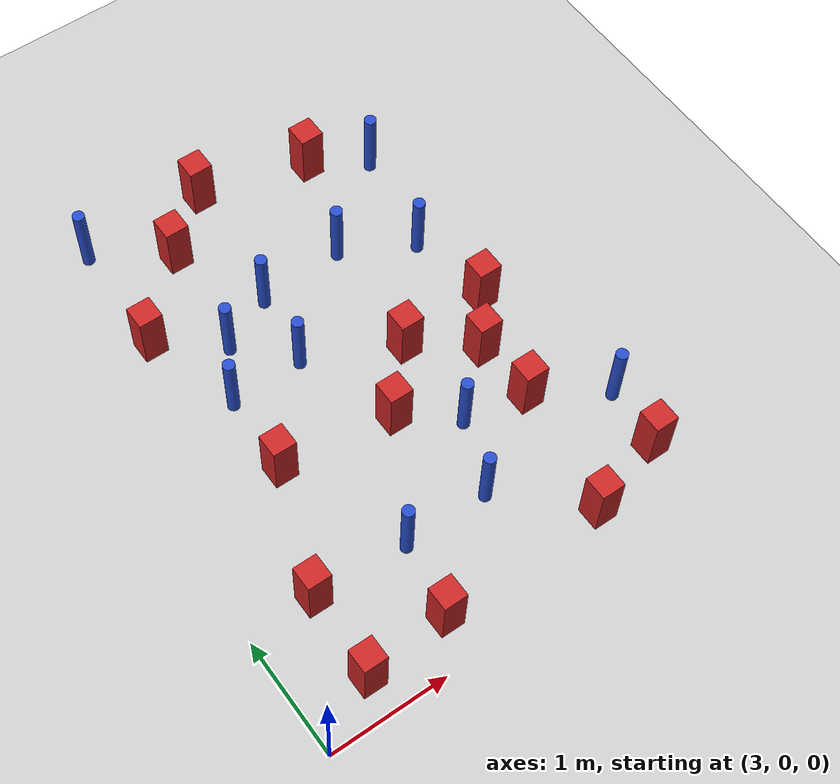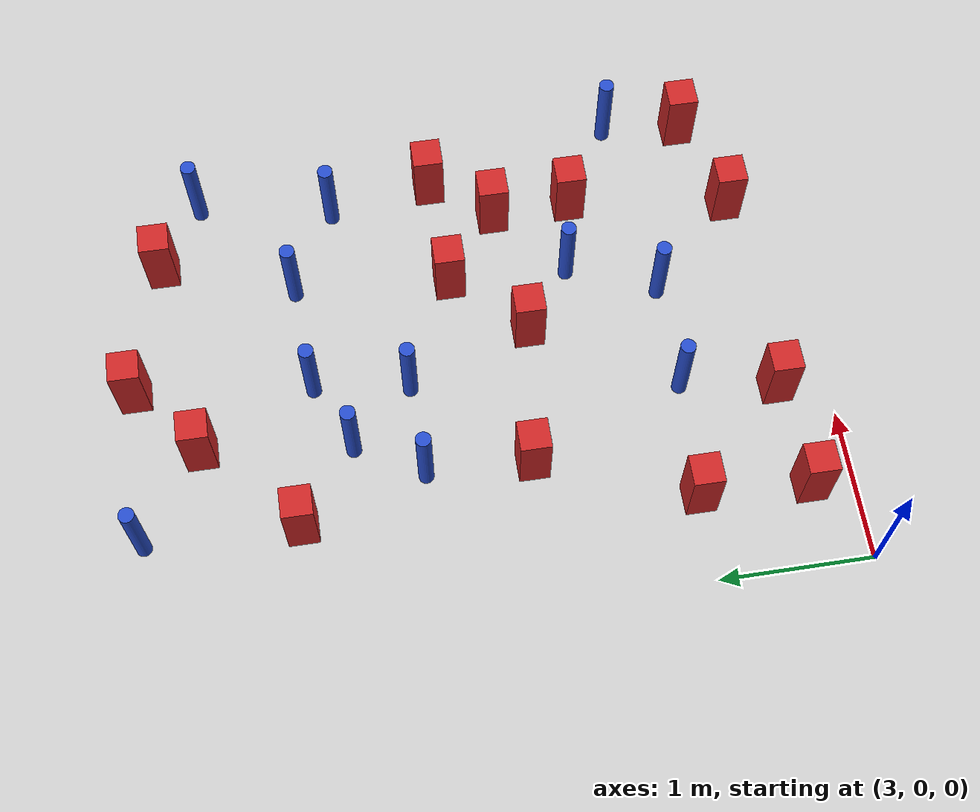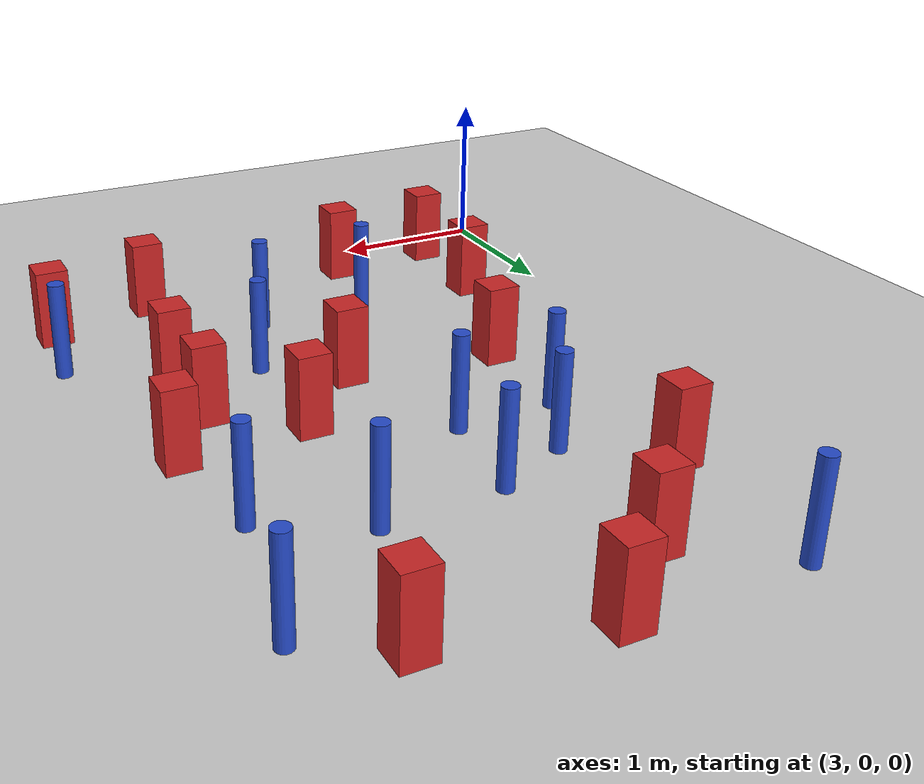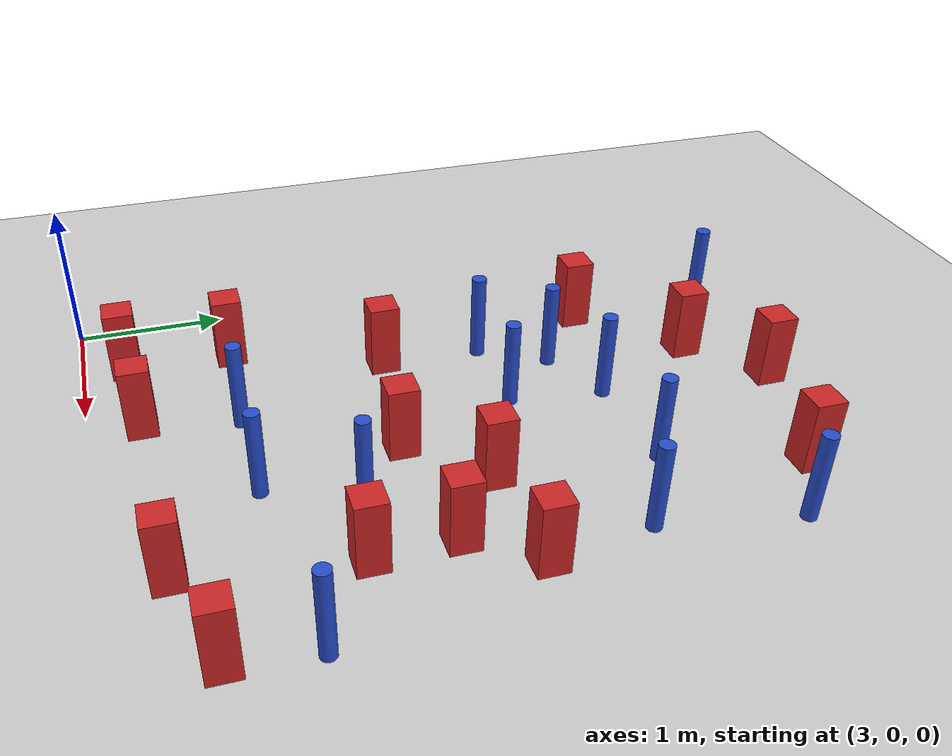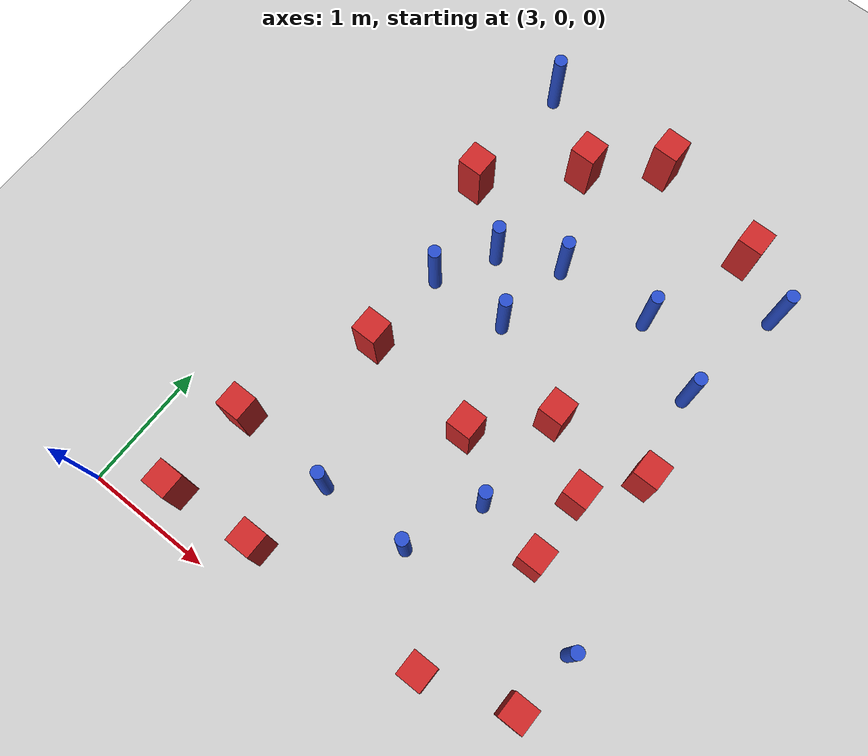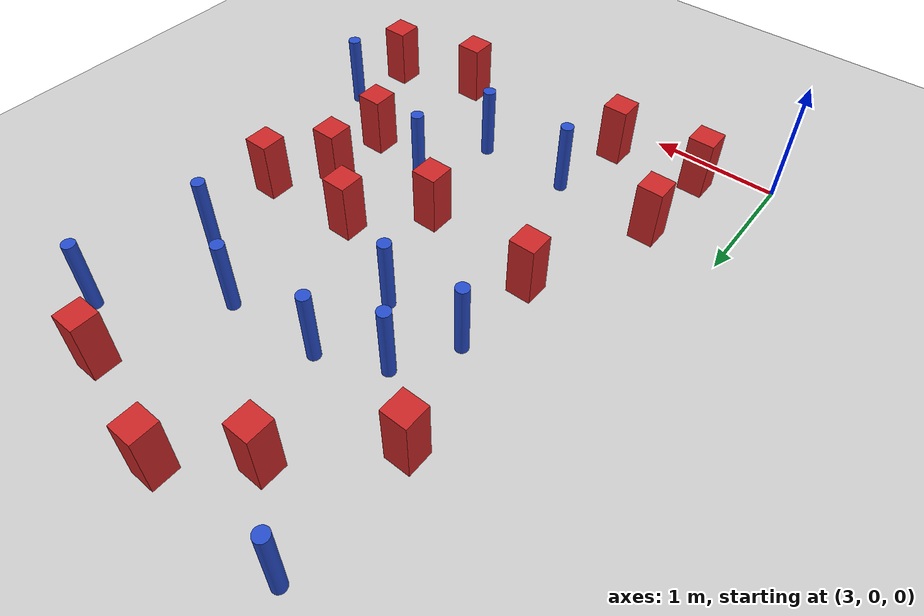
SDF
<sdf version="1.6">
 <world name="default">
  <model name="ground_plane">
   <static>1</static>
   <link name="link">
    <collision name="collision">
     <geometry><plane><normal>0 0 1</normal><size>100 100</size></plane></geometry>
     <surface><friction><ode><mu>100</mu><mu2>50</mu2></ode></friction></surface>
    </collision>
    <visual name="visual">
     <cast_shadows>0</cast_shadows>
     <geometry><plane><normal>0 0 1</normal><size>100 100</size></plane></geometry>
     <material>
      <ambient>1.0 1.0 1.0 1.0</ambient>
      <diffuse>0.8 0.8 0.8 1.0</diffuse>
      <specular>0.01 0.01 0.01 1.000000</specular>
     </material>
    </visual>
   </link>
  </model>
  <model name="pole_obstacle3">
   <static>true</static>
   <pose>6.40580370564 1.11894552427 -9.47619616065e-06 5.49618799738e-07 2.36310414071e-07 -1.55090534796e-07</pose>
   <link name="link">
    <pose>0 0 0.3 0 -0 0</pose>
    <inertial>
     <mass>1</mass>
     <inertia><ixx>0.145833</ixx><ixy>0</ixy><ixz>0</ixz><iyy>0.145833</iyy><iyz>0</iyz><izz>0.125</izz></inertia>
    </inertial>
    <collision name="collision">
     <geometry><cylinder><radius>0.05</radius><length>.6</length></cylinder></geometry>
    </collision>
    <visual name="visual">
     <geometry><cylinder><radius>0.05</radius><length>.6</length></cylinder></geometry>
     <material>
      <script><name>Gazebo/Blue</name><uri>file://media/materials/scripts/gazebo.material</uri></script>
     </material>
    </visual>
   </link>
  </model>
  <model name="square_post_obstacle9">
   <static>true</static>
   <pose>3.55538210605 1.01613566301 -6.11067671241e-07 -5.50515727128e-06 -8.79689657224e-07 2.37013304536e-05</pose>
   <link name="link">
    <pose>0 0 0.25 0 -0 0</pose>
    <inertial>
     <mass>100</mass>
     <inertia>
      <ixx>0.166667</ixx>
      <ixy>0</ixy>
      <ixz>0</ixz>
      <iyy>0.166667</iyy>
      <iyz>0</iyz>
      <izz>0.166667</izz>
     </inertia>
    </inertial>
    <collision name="collision"><geometry><box><size>.2 .2 .5</size></box></geometry></collision>
    <visual name="visual">
     <geometry><box><size>.2 .2 .5</size></box></geometry>
     <material>
      <script><name>Gazebo/Red</name><uri>file://media/materials/scripts/gazebo.material</uri></script>
     </material>
    </visual>
   </link>
  </model>
  <model name="square_post_obstacle15">
   <static>true</static>
   <pose>3.71951136214 3.53396822904 -6.11067671241e-07 -5.50515727128e-06 -8.79689657224e-07 2.37013304536e-05</pose>
   <link name="link">
    <pose>0 0 0.25 0 -0 0</pose>
    <inertial>
     <mass>100</mass>
     <inertia>
      <ixx>0.166667</ixx>
      <ixy>0</ixy>
      <ixz>0</ixz>
      <iyy>0.166667</iyy>
      <iyz>0</iyz>
      <izz>0.166667</izz>
     </inertia>
    </inertial>
    <collision name="collision"><geometry><box><size>.2 .2 .5</size></box></geometry></collision>
    <visual name="visual">
     <geometry><box><size>.2 .2 .5</size></box></geometry>
     <material>
      <script><name>Gazebo/Red</name><uri>file://media/materials/scripts/gazebo.material</uri></script>
     </material>
    </visual>
   </link>
  </model>
  <model name="square_post_obstacle23">
   <static>true</static>
   <pose>3.52569320102 0.297685927197 -6.11067671241e-07 -5.50515727128e-06 -8.79689657224e-07 2.37013304536e-05</pose>
   <link name="link">
    <pose>0 0 0.25 0 -0 0</pose>
    <inertial>
     <mass>100</mass>
     <inertia>
      <ixx>0.166667</ixx>
      <ixy>0</ixy>
      <ixz>0</ixz>
      <iyy>0.166667</iyy>
      <iyz>0</iyz>
      <izz>0.166667</izz>
     </inertia>
    </inertial>
    <collision name="collision"><geometry><box><size>.2 .2 .5</size></box></geometry></collision>
    <visual name="visual">
     <geometry><box><size>.2 .2 .5</size></box></geometry>
     <material>
      <script><name>Gazebo/Red</name><uri>file://media/materials/scripts/gazebo.material</uri></script>
     </material>
    </visual>
   </link>
  </model>
  <model name="square_post_obstacle26">
   <static>true</static>
   <pose>4.23867038706 0.354089430729 -6.11067671241e-07 -5.50515727128e-06 -8.79689657224e-07 2.37013304536e-05</pose>
   <link name="link">
    <pose>0 0 0.25 0 -0 0</pose>
    <inertial>
     <mass>100</mass>
     <inertia>
      <ixx>0.166667</ixx>
      <ixy>0</ixy>
      <ixz>0</ixz>
      <iyy>0.166667</iyy>
      <iyz>0</iyz>
      <izz>0.166667</izz>
     </inertia>
    </inertial>
    <collision name="collision"><geometry><box><size>.2 .2 .5</size></box></geometry></collision>
    <visual name="visual">
     <geometry><box><size>.2 .2 .5</size></box></geometry>
     <material>
      <script><name>Gazebo/Red</name><uri>file://media/materials/scripts/gazebo.material</uri></script>
     </material>
    </visual>
   </link>
  </model>
  <model name="pole_obstacle55">
   <static>true</static>
   <pose>4.21173743195 3.1557542884 -9.47619616065e-06 5.49618799738e-07 2.36310414051e-07 -1.55090534805e-07</pose>
   <link name="link">
    <pose>0 0 0.3 0 -0 0</pose>
    <inertial>
     <mass>1</mass>
     <inertia><ixx>0.145833</ixx><ixy>0</ixy><ixz>0</ixz><iyy>0.145833</iyy><iyz>0</iyz><izz>0.125</izz></inertia>
    </inertial>
    <collision name="collision">
     <geometry><cylinder><radius>0.05</radius><length>.6</length></cylinder></geometry>
    </collision>
    <visual name="visual">
     <geometry><cylinder><radius>0.05</radius><length>.6</length></cylinder></geometry>
     <material>
      <script><name>Gazebo/Blue</name><uri>file://media/materials/scripts/gazebo.material</uri></script>
     </material>
    </visual>
   </link>
  </model>
  <model name="square_post_obstacle76">
   <static>true</static>
   <pose>3.93827418173 2.02833875753 -6.11067671241e-07 -5.50515727128e-06 -8.79689657224e-07 2.37013304536e-05</pose>
   <link name="link">
    <pose>0 0 0.25 0 -0 0</pose>
    <inertial>
     <mass>100</mass>
     <inertia>
      <ixx>0.166667</ixx>
      <ixy>0</ixy>
      <ixz>0</ixz>
      <iyy>0.166667</iyy>
      <iyz>0</iyz>
      <izz>0.166667</izz>
     </inertia>
    </inertial>
    <collision name="collision"><geometry><box><size>.2 .2 .5</size></box></geometry></collision>
    <visual name="visual">
     <geometry><box><size>.2 .2 .5</size></box></geometry>
     <material>
      <script><name>Gazebo/Red</name><uri>file://media/materials/scripts/gazebo.material</uri></script>
     </material>
    </visual>
   </link>
  </model>
  <model name="pole_obstacle74">
   <static>true</static>
   <pose>5.07295200999 0.983745637312 -9.47619616065e-06 5.49618799737e-07 2.36310414073e-07 -1.55090534792e-07</pose>
   <link name="link">
    <pose>0 0 0.3 0 -0 0</pose>
    <inertial>
     <mass>1</mass>
     <inertia><ixx>0.145833</ixx><ixy>0</ixy><ixz>0</ixz><iyy>0.145833</iyy><iyz>0</iyz><izz>0.125</izz></inertia>
    </inertial>
    <collision name="collision">
     <geometry><cylinder><radius>0.05</radius><length>.6</length></cylinder></geometry>
    </collision>
    <visual name="visual">
     <geometry><cylinder><radius>0.05</radius><length>.6</length></cylinder></geometry>
     <material>
      <script><name>Gazebo/Blue</name><uri>file://media/materials/scripts/gazebo.material</uri></script>
     </material>
    </visual>
   </link>
  </model>
  <model name="pole_obstacle86">
   <static>true</static>
   <pose>5.41553206695 3.42175717961 -9.47619616065e-06 5.49618799738e-07 2.36310414051e-07 -1.55090534805e-07</pose>
   <link name="link">
    <pose>0 0 0.3 0 -0 0</pose>
    <inertial>
     <mass>1</mass>
     <inertia><ixx>0.145833</ixx><ixy>0</ixy><ixz>0</ixz><iyy>0.145833</iyy><iyz>0</iyz><izz>0.125</izz></inertia>
    </inertial>
    <collision name="collision">
     <geometry><cylinder><radius>0.05</radius><length>.6</length></cylinder></geometry>
    </collision>
    <visual name="visual">
     <geometry><cylinder><radius>0.05</radius><length>.6</length></cylinder></geometry>
     <material>
      <script><name>Gazebo/Blue</name><uri>file://media/materials/scripts/gazebo.material</uri></script>
     </material>
    </visual>
   </link>
  </model>
  <model name="square_post_obstacle82">
   <static>true</static>
   <pose>5.3345197611 2.37565667691 -6.11067671241e-07 -5.50515727128e-06 -8.79689657224e-07 2.37013304536e-05</pose>
   <link name="link">
    <pose>0 0 0.25 0 -0 0</pose>
    <inertial>
     <mass>100</mass>
     <inertia>
      <ixx>0.166667</ixx>
      <ixy>0</ixy>
      <ixz>0</ixz>
      <iyy>0.166667</iyy>
      <iyz>0</iyz>
      <izz>0.166667</izz>
     </inertia>
    </inertial>
    <collision name="collision"><geometry><box><size>.2 .2 .5</size></box></geometry></collision>
    <visual name="visual">
     <geometry><box><size>.2 .2 .5</size></box></geometry>
     <material>
      <script><name>Gazebo/Red</name><uri>file://media/materials/scripts/gazebo.material</uri></script>
     </material>
    </visual>
   </link>
  </model>
  <model name="pole_obstacle97">
   <static>true</static>
   <pose>4.34868274485 0.977010980778 -9.47619616065e-06 5.49618799737e-07 2.36310414073e-07 -1.55090534792e-07</pose>
   <link name="link">
    <pose>0 0 0.3 0 -0 0</pose>
    <inertial>
     <mass>1</mass>
     <inertia><ixx>0.145833</ixx><ixy>0</ixy><ixz>0</ixz><iyy>0.145833</iyy><iyz>0</iyz><izz>0.125</izz></inertia>
    </inertial>
    <collision name="collision">
     <geometry><cylinder><radius>0.05</radius><length>.6</length></cylinder></geometry>
    </collision>
    <visual name="visual">
     <geometry><cylinder><radius>0.05</radius><length>.6</length></cylinder></geometry>
     <material>
      <script><name>Gazebo/Blue</name><uri>file://media/materials/scripts/gazebo.material</uri></script>
     </material>
    </visual>
   </link>
  </model>
  <model name="pole_obstacle121">
   <static>true</static>
   <pose>6.16025132692 4.0187862755 -9.47619616065e-06 5.49618799738e-07 2.36310414038e-07 -1.55090534813e-07</pose>
   <link name="link">
    <pose>0 0 0.3 0 -0 0</pose>
    <inertial>
     <mass>1</mass>
     <inertia><ixx>0.145833</ixx><ixy>0</ixy><ixz>0</ixz><iyy>0.145833</iyy><iyz>0</iyz><izz>0.125</izz></inertia>
    </inertial>
    <collision name="collision">
     <geometry><cylinder><radius>0.05</radius><length>.6</length></cylinder></geometry>
    </collision>
    <visual name="visual">
     <geometry><cylinder><radius>0.05</radius><length>.6</length></cylinder></geometry>
     <material>
      <script><name>Gazebo/Blue</name><uri>file://media/materials/scripts/gazebo.material</uri></script>
     </material>
    </visual>
   </link>
  </model>
  <model name="pole_obstacle122">
   <static>true</static>
   <pose>5.31365486598 1.57367265441 -9.47619616065e-06 5.49618799738e-07 2.36310414071e-07 -1.55090534796e-07</pose>
   <link name="link">
    <pose>0 0 0.3 0 -0 0</pose>
    <inertial>
     <mass>1</mass>
     <inertia><ixx>0.145833</ixx><ixy>0</ixy><ixz>0</ixz><iyy>0.145833</iyy><iyz>0</iyz><izz>0.125</izz></inertia>
    </inertial>
    <collision name="collision">
     <geometry><cylinder><radius>0.05</radius><length>.6</length></cylinder></geometry>
    </collision>
    <visual name="visual">
     <geometry><cylinder><radius>0.05</radius><length>.6</length></cylinder></geometry>
     <material>
      <script><name>Gazebo/Blue</name><uri>file://media/materials/scripts/gazebo.material</uri></script>
     </material>
    </visual>
   </link>
  </model>
  <model name="pole_obstacle131">
   <static>true</static>
   <pose>3.96403284781 2.71536105877 -9.47619616065e-06 5.49618799737e-07 2.36310414035e-07 -1.55090534817e-07</pose>
   <link name="link">
    <pose>0 0 0.3 0 -0 0</pose>
    <inertial>
     <mass>1</mass>
     <inertia><ixx>0.145833</ixx><ixy>0</ixy><ixz>0</ixz><iyy>0.145833</iyy><iyz>0</iyz><izz>0.125</izz></inertia>
    </inertial>
    <collision name="collision">
     <geometry><cylinder><radius>0.05</radius><length>.6</length></cylinder></geometry>
    </collision>
    <visual name="visual">
     <geometry><cylinder><radius>0.05</radius><length>.6</length></cylinder></geometry>
     <material>
      <script><name>Gazebo/Blue</name><uri>file://media/materials/scripts/gazebo.material</uri></script>
     </material>
    </visual>
   </link>
  </model>
  <model name="pole_obstacle143">
   <static>true</static>
   <pose>5.99277311206 3.11308428605 -9.47619616065e-06 5.49618799738e-07 2.36310414051e-07 -1.55090534805e-07</pose>
   <link name="link">
    <pose>0 0 0.3 0 -0 0</pose>
    <inertial>
     <mass>1</mass>
     <inertia><ixx>0.145833</ixx><ixy>0</ixy><ixz>0</ixz><iyy>0.145833</iyy><iyz>0</iyz><izz>0.125</izz></inertia>
    </inertial>
    <collision name="collision">
     <geometry><cylinder><radius>0.05</radius><length>.6</length></cylinder></geometry>
    </collision>
    <visual name="visual">
     <geometry><cylinder><radius>0.05</radius><length>.6</length></cylinder></geometry>
     <material>
      <script><name>Gazebo/Blue</name><uri>file://media/materials/scripts/gazebo.material</uri></script>
     </material>
    </visual>
   </link>
  </model>
  <model name="pole_obstacle145">
   <static>true</static>
   <pose>3.73943568499 4.53620728928 -9.47619616065e-06 5.49618799738e-07 2.3631041406e-07 -1.55090534801e-07</pose>
   <link name="link">
    <pose>0 0 0.3 0 -0 0</pose>
    <inertial>
     <mass>1</mass>
     <inertia><ixx>0.145833</ixx><ixy>0</ixy><ixz>0</ixz><iyy>0.145833</iyy><iyz>0</iyz><izz>0.125</izz></inertia>
    </inertial>
    <collision name="collision">
     <geometry><cylinder><radius>0.05</radius><length>.6</length></cylinder></geometry>
    </collision>
    <visual name="visual">
     <geometry><cylinder><radius>0.05</radius><length>.6</length></cylinder></geometry>
     <material>
      <script><name>Gazebo/Blue</name><uri>file://media/materials/scripts/gazebo.material</uri></script>
     </material>
    </visual>
   </link>
  </model>
  <model name="pole_obstacle146">
   <static>true</static>
   <pose>4.59119838336 2.73745709856 -9.47619616065e-06 5.49618799738e-07 2.36310414051e-07 -1.55090534805e-07</pose>
   <link name="link">
    <pose>0 0 0.3 0 -0 0</pose>
    <inertial>
     <mass>1</mass>
     <inertia><ixx>0.145833</ixx><ixy>0</ixy><ixz>0</ixz><iyy>0.145833</iyy><iyz>0</iyz><izz>0.125</izz></inertia>
    </inertial>
    <collision name="collision">
     <geometry><cylinder><radius>0.05</radius><length>.6</length></cylinder></geometry>
    </collision>
    <visual name="visual">
     <geometry><cylinder><radius>0.05</radius><length>.6</length></cylinder></geometry>
     <material>
      <script><name>Gazebo/Blue</name><uri>file://media/materials/scripts/gazebo.material</uri></script>
     </material>
    </visual>
   </link>
  </model>
  <model name="square_post_obstacle157">
   <static>true</static>
   <pose>4.79609090478 4.53364795757 -6.11067671241e-07 -5.50515727128e-06 -8.79689657224e-07 2.37013304536e-05</pose>
   <link name="link">
    <pose>0 0 0.25 0 -0 0</pose>
    <inertial>
     <mass>100</mass>
     <inertia>
      <ixx>0.166667</ixx>
      <ixy>0</ixy>
      <ixz>0</ixz>
      <iyy>0.166667</iyy>
      <iyz>0</iyz>
      <izz>0.166667</izz>
     </inertia>
    </inertial>
    <collision name="collision"><geometry><box><size>.2 .2 .5</size></box></geometry></collision>
    <visual name="visual">
     <geometry><box><size>.2 .2 .5</size></box></geometry>
     <material>
      <script><name>Gazebo/Red</name><uri>file://media/materials/scripts/gazebo.material</uri></script>
     </material>
    </visual>
   </link>
  </model>
  <model name="square_post_obstacle163">
   <static>true</static>
   <pose>5.83250815881 1.4746276174 -6.11067671241e-07 -5.50515727128e-06 -8.79689657224e-07 2.37013304536e-05</pose>
   <link name="link">
    <pose>0 0 0.25 0 -0 0</pose>
    <inertial>
     <mass>100</mass>
     <inertia>
      <ixx>0.166667</ixx>
      <ixy>0</ixy>
      <ixz>0</ixz>
      <iyy>0.166667</iyy>
      <iyz>0</iyz>
      <izz>0.166667</izz>
     </inertia>
    </inertial>
    <collision name="collision"><geometry><box><size>.2 .2 .5</size></box></geometry></collision>
    <visual name="visual">
     <geometry><box><size>.2 .2 .5</size></box></geometry>
     <material>
      <script><name>Gazebo/Red</name><uri>file://media/materials/scripts/gazebo.material</uri></script>
     </material>
    </visual>
   </link>
  </model>
  <model name="pole_obstacle177">
   <static>true</static>
   <pose>4.67641214926 3.37076409259 -9.47619616065e-06 5.49618799738e-07 2.36310414051e-07 -1.55090534805e-07</pose>
   <link name="link">
    <pose>0 0 0.3 0 -0 0</pose>
    <inertial>
     <mass>1</mass>
     <inertia><ixx>0.145833</ixx><ixy>0</ixy><ixz>0</ixz><iyy>0.145833</iyy><iyz>0</iyz><izz>0.125</izz></inertia>
    </inertial>
    <collision name="collision">
     <geometry><cylinder><radius>0.05</radius><length>.6</length></cylinder></geometry>
    </collision>
    <visual name="visual">
     <geometry><cylinder><radius>0.05</radius><length>.6</length></cylinder></geometry>
     <material>
      <script><name>Gazebo/Blue</name><uri>file://media/materials/scripts/gazebo.material</uri></script>
     </material>
    </visual>
   </link>
  </model>
  <model name="square_post_obstacle171">
   <static>true</static>
   <pose>5.67195359651 0.39494755215 -6.11067671241e-07 -5.50515727128e-06 -8.79689657224e-07 2.37013304536e-05</pose>
   <link name="link">
    <pose>0 0 0.25 0 -0 0</pose>
    <inertial>
     <mass>100</mass>
     <inertia>
      <ixx>0.166667</ixx>
      <ixy>0</ixy>
      <ixz>0</ixz>
      <iyy>0.166667</iyy>
      <iyz>0</iyz>
      <izz>0.166667</izz>
     </inertia>
    </inertial>
    <collision name="collision"><geometry><box><size>.2 .2 .5</size></box></geometry></collision>
    <visual name="visual">
     <geometry><box><size>.2 .2 .5</size></box></geometry>
     <material>
      <script><name>Gazebo/Red</name><uri>file://media/materials/scripts/gazebo.material</uri></script>
     </material>
    </visual>
   </link>
  </model>
  <model name="square_post_obstacle174">
   <static>true</static>
   <pose>4.32296348351 4.13064296187 -6.11067671241e-07 -5.50515727128e-06 -8.79689657224e-07 2.37013304536e-05</pose>
   <link name="link">
    <pose>0 0 0.25 0 -0 0</pose>
    <inertial>
     <mass>100</mass>
     <inertia>
      <ixx>0.166667</ixx>
      <ixy>0</ixy>
      <ixz>0</ixz>
      <iyy>0.166667</iyy>
      <iyz>0</iyz>
      <izz>0.166667</izz>
     </inertia>
    </inertial>
    <collision name="collision"><geometry><box><size>.2 .2 .5</size></box></geometry></collision>
    <visual name="visual">
     <geometry><box><size>.2 .2 .5</size></box></geometry>
     <material>
      <script><name>Gazebo/Red</name><uri>file://media/materials/scripts/gazebo.material</uri></script>
     </material>
    </visual>
   </link>
  </model>
  <model name="square_post_obstacle175">
   <static>true</static>
   <pose>4.8938167536 1.90419557198 -6.11067671241e-07 -5.50515727128e-06 -8.79689657224e-07 2.37013304536e-05</pose>
   <link name="link">
    <pose>0 0 0.25 0 -0 0</pose>
    <inertial>
     <mass>100</mass>
     <inertia>
      <ixx>0.166667</ixx>
      <ixy>0</ixy>
      <ixz>0</ixz>
      <iyy>0.166667</iyy>
      <iyz>0</iyz>
      <izz>0.166667</izz>
     </inertia>
    </inertial>
    <collision name="collision"><geometry><box><size>.2 .2 .5</size></box></geometry></collision>
    <visual name="visual">
     <geometry><box><size>.2 .2 .5</size></box></geometry>
     <material>
      <script><name>Gazebo/Red</name><uri>file://media/materials/scripts/gazebo.material</uri></script>
     </material>
    </visual>
   </link>
  </model>
  <model name="square_post_obstacle184">
   <static>true</static>
   <pose>5.71168871673 4.29500230123 -6.11067671241e-07 -5.50515727128e-06 -8.79689657224e-07 2.37013304536e-05</pose>
   <link name="link">
    <pose>0 0 0.25 0 -0 0</pose>
    <inertial>
     <mass>100</mass>
     <inertia>
      <ixx>0.166667</ixx>
      <ixy>0</ixy>
      <ixz>0</ixz>
      <iyy>0.166667</iyy>
      <iyz>0</iyz>
      <izz>0.166667</izz>
     </inertia>
    </inertial>
    <collision name="collision"><geometry><box><size>.2 .2 .5</size></box></geometry></collision>
    <visual name="visual">
     <geometry><box><size>.2 .2 .5</size></box></geometry>
     <material>
      <script><name>Gazebo/Red</name><uri>file://media/materials/scripts/gazebo.material</uri></script>
     </material>
    </visual>
   </link>
  </model>
  <model name="square_post_obstacle190">
   <static>true</static>
   <pose>5.80818743185 2.00981176945 -6.11067671241e-07 -5.50515727128e-06 -8.79689657224e-07 2.37013304536e-05</pose>
   <link name="link">
    <pose>0 0 0.25 0 -0 0</pose>
    <inertial>
     <mass>100</mass>
     <inertia>
      <ixx>0.166667</ixx>
      <ixy>0</ixy>
      <ixz>0</ixz>
      <iyy>0.166667</iyy>
      <iyz>0</iyz>
      <izz>0.166667</izz>
     </inertia>
    </inertial>
    <collision name="collision"><geometry><box><size>.2 .2 .5</size></box></geometry></collision>
    <visual name="visual">
     <geometry><box><size>.2 .2 .5</size></box></geometry>
     <material>
      <script><name>Gazebo/Red</name><uri>file://media/materials/scripts/gazebo.material</uri></script>
     </material>
    </visual>
   </link>
  </model>
  <model name="square_post_obstacle205">
   <static>true</static>
   <pose>6.34343150543 0.596612627994 -6.11067671241e-07 -5.50515727128e-06 -8.79689657224e-07 2.37013304536e-05</pose>
   <link name="link">
    <pose>0 0 0.25 0 -0 0</pose>
    <inertial>
     <mass>100</mass>
     <inertia>
      <ixx>0.166667</ixx>
      <ixy>0</ixy>
      <ixz>0</ixz>
      <iyy>0.166667</iyy>
      <iyz>0</iyz>
      <izz>0.166667</izz>
     </inertia>
    </inertial>
    <collision name="collision"><geometry><box><size>.2 .2 .5</size></box></geometry></collision>
    <visual name="visual">
     <geometry><box><size>.2 .2 .5</size></box></geometry>
     <material>
      <script><name>Gazebo/Red</name><uri>file://media/materials/scripts/gazebo.material</uri></script>
     </material>
    </visual>
   </link>
  </model>
  <model name="square_post_obstacle242">
   <static>true</static>
   <pose>6.1070899502 2.41682997688 -6.11067671241e-07 -5.50515727128e-06 -8.79689657224e-07 2.37013304536e-05</pose>
   <link name="link">
    <pose>0 0 0.25 0 -0 0</pose>
    <inertial>
     <mass>100</mass>
     <inertia>
      <ixx>0.166667</ixx>
      <ixy>0</ixy>
      <ixz>0</ixz>
      <iyy>0.166667</iyy>
      <iyz>0</iyz>
      <izz>0.166667</izz>
     </inertia>
    </inertial>
    <collision name="collision"><geometry><box><size>.2 .2 .5</size></box></geometry></collision>
    <visual name="visual">
     <geometry><box><size>.2 .2 .5</size></box></geometry>
     <material>
      <script><name>Gazebo/Red</name><uri>file://media/materials/scripts/gazebo.material</uri></script>
     </material>
    </visual>
   </link>
  </model>
 </world>
</sdf>
